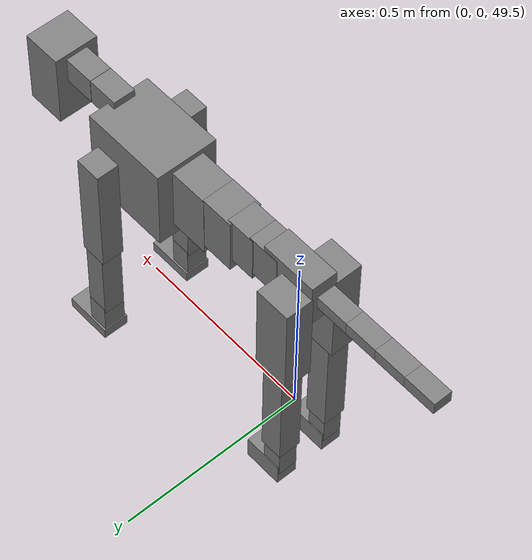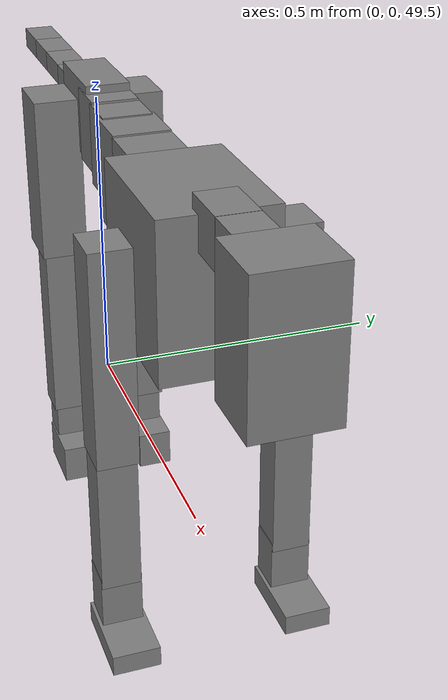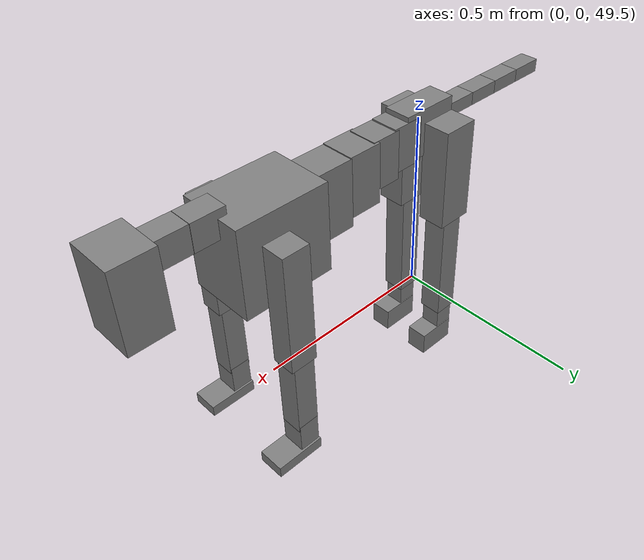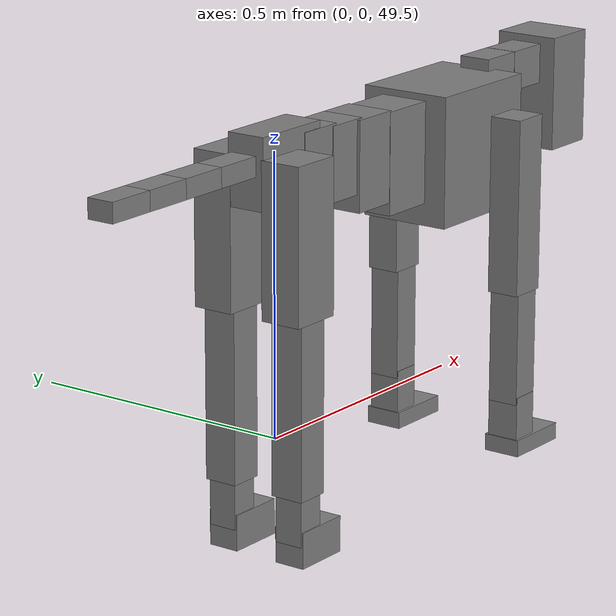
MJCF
<mujoco model="dog">

    <default>
        <joint armature="0.02" stiffness="1" damping="0.2" limited="true"/>
        <geom condim="3" friction="1 0.05 0.05" margin="0.01"/>
        <motor ctrllimited="true" ctrlrange="-1.0 1.0" forcelimited="true" gear="50"/>
    </default>

    <compiler inertiafromgeom="true" angle="radian"/>

    <option timestep="0.016" iterations="50" tolerance="1e-10" solver="Newton" jacobian="dense" cone="pyramidal"/>

    <size nconmax="20000" njmax="60000" nstack="5000000"/>
    <visual>
        <map force="0.1" zfar="30"/>
        <rgba haze="0.15 0.25 0.35 1"/>
        <quality shadowsize="2048"/>
        <global offwidth="800" offheight="800"/>
    </visual>

    <asset>
        <texture type="skybox" builtin="gradient" rgb1="0.3 0.5 0.7" rgb2="0 0 0" width="512" height="512"/>
        <texture name="texplane" type="2d" builtin="checker" rgb1=".2 .3 .4" rgb2=".1 0.15 0.2" width="512" height="512"
                 mark="cross" markrgb=".8 .8 .8"/>
        <texture name="texgeom" type="cube" builtin="flat" mark="cross" width="127" height="1278" rgb1="0.8 0.6 0.4"
                 rgb2="0.8 0.6 0.4" markrgb="1 1 1" random="0.01"/>

        <material name="matplane" reflectance="0.3" texture="texplane" texrepeat="1 1" texuniform="true"/>
        <material name="matgeom" texture="texgeom" texuniform="true" rgba="0.8 0.6 .4 1"/>
    </asset>

    <worldbody>
        <geom name="floor" pos="0 0 0" size="0 0 .25" type="plane" material="matplane" condim="3"/>

        <light directional="false" diffuse=".2 .2 .2" specular="0 0 0" pos="0 0 5" dir="0 0 -1" castshadow="false"/>
        <light mode="targetbodycom" target="torso" directional="false" diffuse=".8 .8 .8" specular="0.3 0.3 0.3"
               pos="0 0 4.0" dir="0 0 -1"/>

        <body name="root" pos="0 0 50">
            <freejoint name="root_1"/>
            <geom type="box" pos="0 0 -0.02" size="0.0774  0.0358  0.063" density="2030"/>

            <body name="spine1" pos="0.054 0 0">
                <joint name="spine1_y" axis="0 1 0" range="0 0.7" limited="true"/>
                <geom type="box" pos="0.02375 0 -0.03" size="0.04375  0.0375  0.05985" density="2030"/>

                <body name="spine2" pos="0.0612 0 0">
                    <joint name="spine2_y" axis="0 1 0" range="-0.15 0.15" limited="true"/>
                    <geom type="box" pos="0.03555  0  -0.04" size="0.04055  0.039  0.06615" density="2030"/>

                    <body name="spine3" pos="0.0730 0 0">
                        <joint name="spine3_y" axis="0 1 0" range="-0.15 0.15" limited="true"/>
                        <geom type="box" pos="0.03555  0  -0.057" size="0.04555  0.0445  0.081" density="2030"/>

                        <body name="spine4" pos="0.0780 0 0">
                            <joint name="spine4_y" axis="0 1 0" range="-0.15 0.15" limited="true"/>
                            <geom type="box" pos="0.05265  0  -0.07" size="0.05265  0.045  0.09135" density="2030"/>

                            <body name="torso" pos="0.1082 0 0">
                                <joint name="torso_y" axis="0 1 0" range="-0.15 0.15" limited="true"/>
                                <geom type="box" pos="0.11925  0  -0.085" size="0.11925  0.085  0.11745"
                                      density="2030"/>

                                <body name="neck1" pos="0.2160  0   0.0180">
                                    <joint name="neck1_y" axis="0 1 0" range="-1.2  -1" limited="true"/>
                                    <geom type="box" pos="0.0423  0  0" size="0.0423  0.03  0.036" density="2325"/>

                                    <body name="neck2" pos="0.0853  0  0">
                                        <joint name="neck2_y" axis="0 1 0" range="0.1  0" limited="true"/>
                                        <geom type="box" pos="0.0423  0  0" size="0.0423  0.03  0.036" density="2325"/>

                                        <body name="head" pos="0.0853  0  0">
                                            <joint name="head_y" axis="0 1 0" range="-0.3  -0.2" limited="true"/>
                                            <geom type="box" pos="0.0531  0  -0.055" size="0.0531  0.06  0.1044"
                                                  density="4030"/>

                                        </body>
                                    </body>
                                </body>

                                <body name="front_shoulder" pos="0.156  0   -0.0480">
                                    <joint name="front_shoulder_y" axis="0 1 0" range="-1 1.5" limited="true"/>
                                    <geom type="box" pos="0 0.13 -0.1331" size="0.0353  0.0301  0.1597" density="1158"/>
                                    <geom type="box" pos="0 -0.13 -0.1331" size="0.0353  0.0301  0.1597"
                                          density="1158"/>

                                    <body name="front_elbow" pos="0  0  -0.2661">
                                        <joint name="front_elbow_y" axis="0 1 0" range="-2 0" limited="true"/>
                                        <geom type="box" pos="0 0.13 -0.1157" size="0.0282  0.0289  0.1157"
                                              density="1081"/>
                                        <geom type="box" pos="0 -0.13 -0.1157" size="0.0282  0.0289  0.1157"
                                              density="1081"/>

                                        <body name="front_wrist" pos="0  0  -0.2314">
                                            <joint name="front_wrist_y" axis="0 1 0" range="-0.2 0" limited="true"/>
                                            <geom type="box" pos="0 0.13 -0.0401" size="0.0268  0.0298  0.0533"
                                                  density="1664"/>
                                            <geom type="box" pos="0 -0.13 -0.0401" size="0.0268  0.0298  0.0533"
                                                  density="1664"/>

                                            <body name="front_finger_end" pos="0  0  -0.0802">
                                                <joint name="front_finger_y" axis="0 1 0" range="-0.4 1"
                                                       limited="true"/>
                                                <geom type="box" pos="0.0348  0.13  -0.0003"
                                                      size="0.0638  0.0348  0.0153" density="1515"/>
                                                <geom type="box" pos="0.0348  -0.13  -0.0003"
                                                      size="0.0638  0.0348  0.0153" density="1515"/>

                                            </body>

                                        </body>
                                    </body>
                                </body>

                            </body>
                        </body>
                    </body>
                </body>
            </body>

            <body name="back_hip" pos="-0.03 0 -0.018">
                <joint name="back_hip_y" axis="0 1 0" range="-1.5 0.3" limited="true"/>
                <geom type="box" pos="0 0.07 -0.1134" size="0.0482  0.0378  0.1362" density="1154"/>
                <geom type="box" pos="0 -0.07 -0.1134" size="0.0482  0.0378  0.1362" density="1154"/>

                <body name="back_knee" pos="0  0  -0.2268">
                    <joint name="back_knee_y" axis="0 1 0" range="0 2.8" limited="true"/>
                    <geom type="box" pos="0 0.07 -0.1577" size="0.0312  0.0307  0.1733" density="1227"/>
                    <geom type="box" pos="0 -0.07 -0.1577" size="0.0312  0.0307  0.1733" density="1227"/>

                    <body name="back_ankle" pos="0  0  -0.3155">
                        <joint name="back_ankle_y" axis="0 1 0" range="-2.2 0" limited="true"/>
                        <geom type="box" pos="0 0.07 -0.0433" size="0.0264  0.0264  0.0546" density="1284"/>
                        <geom type="box" pos="0 -0.07 -0.0433" size="0.0264  0.0264  0.0546" density="1284"/>

                        <body name="back_toe_end" pos="0  0  -0.0867">
                            <joint name="back_toe_y" axis="0 1 0" range="-0.4 1" limited="true"/>
                            <geom type="box" pos="0.0288  0.07  -0.0172" size="0.0528  0.0288  0.0322" density="1515"/>
                            <geom type="box" pos="0.0288  -0.07  -0.0172" size="0.0528  0.0288  0.0322" density="1515"/>

                        </body>
                    </body>
                </body>
            </body>

            <body name="tail1" pos="-0.074 0 -0.006">
                <joint name="tail1_y" axis="0 1 0" range="-0.2 0.2" limited="true"/>
                <geom type="box" pos="-0.0536  0  0" size="0.045  0.025  0.0175" density="1587"/>

                <body name="tail2" pos="-0.09 0 0">
                    <joint name="tail2_y" axis="0 1 0" range="-0.2 0.2" limited="true"/>
                    <geom type="box" pos="-0.0536  0  0" size="0.045  0.025  0.0175" density="1587"/>

                    <body name="tail3" pos="-0.09 0 0">
                        <joint name="tail3_y" axis="0 1 0" range="-0.2 0.2" limited="true"/>
                        <geom type="box" pos="-0.0536  0  0" size="0.045  0.025  0.0175" density="1587"/>

                        <body name="tail4" pos="-0.09 0 0">
                            <joint name="tail4_y" axis="0 1 0" range="-0.2 0.2" limited="true"/>
                            <geom type="box" pos="-0.0536  0  0" size="0.045  0.025  0.0175" density="1587"/>

                        </body>
                    </body>
                </body>
            </body>
        </body>
    </worldbody>

    <actuator>
        <motor joint="spine1_y" forcerange="-150 150     "/>
        <motor joint="spine2_y" forcerange="-150 150     "/>
        <motor joint="spine3_y" forcerange="-150 150     "/>
        <motor joint="spine4_y" forcerange="-150 150     "/>
        <motor joint="torso_y" forcerange="-150 150     "/>
        <motor joint="neck1_y" forcerange="-100 100       "/>
        <motor joint="neck2_y" forcerange="-100 100       "/>
        <motor joint="head_y" forcerange="-150 150       "/>
        <motor joint="front_shoulder_y" forcerange="-149.40 151.59"/>
        <motor joint="front_elbow_y" forcerange="-181.38 128.55"/>
        <motor joint="front_wrist_y" forcerange="-102.43 135.58"/>
        <motor joint="front_finger_y" forcerange="-59.36 86.25"/>
        <motor joint="back_hip_y" forcerange="-356.75 347.07"/>
        <motor joint="back_knee_y" forcerange="-354.77 292.46"/>
        <motor joint="back_angle_y" forcerange="-150.94 171.09"/>
        <motor joint="back_toe_y" forcerange="-116.41 33.94"/>
        <motor joint="tail1_y" forcerange="-50 50     "/>
        <motor joint="tail2_y" forcerange="-50 50     "/>
        <motor joint="tail3_y" forcerange="-50 50     "/>
        <motor joint="tail4_y" forcerange="-50 50     "/>
    </actuator>
</mujoco>
